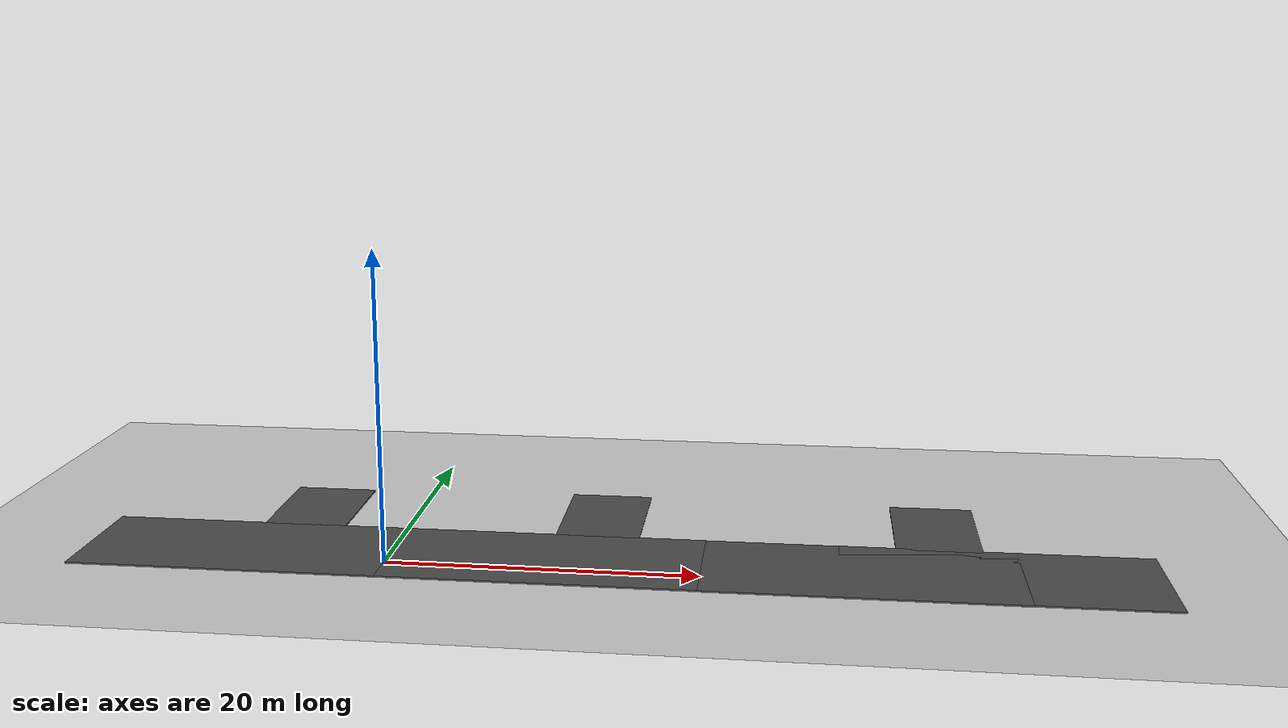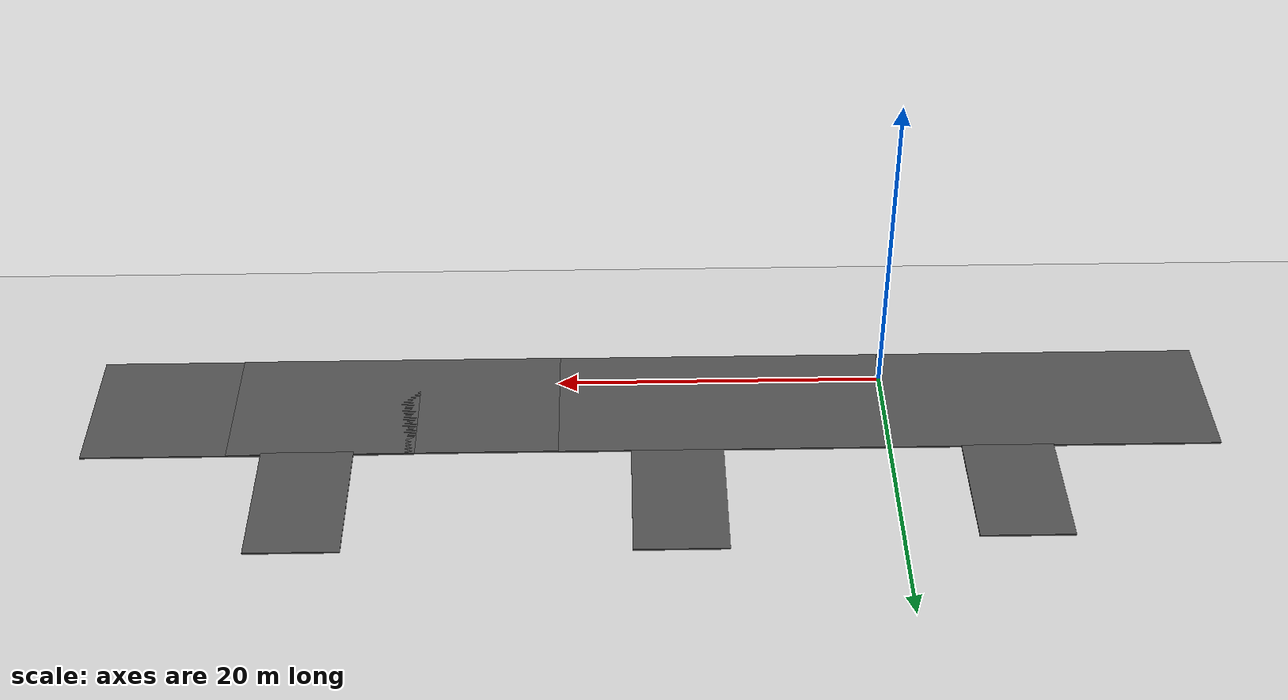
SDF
<sdf version="1.7">
 <world name="default">
  <light name="sun" type="directional">
   <pose>0 0 10 0 -0 0</pose>
   <diffuse>0.8 0.8 0.8 1</diffuse>
   <specular>0.2 0.2 0.2 1</specular>
   <attenuation>
    <range>1000</range>
    <constant>0.9</constant>
    <linear>0.01</linear>
    <quadratic>0.001</quadratic>
   </attenuation>
   <direction>-0.5 0.1 -0.9</direction>
   <spot><inner_angle>0</inner_angle><outer_angle>0</outer_angle><falloff>0</falloff></spot>
  </light>
  <gravity>0 0 -9.8</gravity>
  <magnetic_field>6e-06 2.3e-05 -4.2e-05</magnetic_field>
  <atmosphere type="adiabatic"/>
  <physics type="ode">
   <max_step_size>0.001</max_step_size>
   <real_time_factor>1</real_time_factor>
   <real_time_update_rate>1000</real_time_update_rate>
  </physics>
  <scene><ambient>0.4 0.4 0.4 1</ambient><background>0.7 0.7 0.7 1</background><shadows>1</shadows></scene>
  <audio><device>default</device></audio>
  <spherical_coordinates>
   <surface_model>EARTH_WGS84</surface_model>
   <latitude_deg>0</latitude_deg>
   <longitude_deg>0</longitude_deg>
   <elevation>0</elevation>
   <heading_deg>0</heading_deg>
  </spherical_coordinates>
  <model name="asphalt_plane_street">
   <link name="link">
    <inertial>
     <inertia><ixx>0</ixx><ixy>0</ixy><ixz>0</ixz><iyy>0</iyy><iyz>0</iyz><izz>0</izz></inertia>
     <mass>0</mass>
    </inertial>
    <visual name="visual">
     <cast_shadows>0</cast_shadows>
     <geometry><box><size>20 8.76673 0.1</size></box></geometry>
     <material>
      <script>
       <uri>model://asphalt_plane/materials/scripts</uri>
       <uri>model://asphalt_plane/materials/textures</uri>
       <name>vrc/asphalt</name>
      </script>
      <shader type="pixel"/>
     </material>
    </visual>
    <collision name="collision">
     <geometry><box><size>20 8.76673 0.1</size></box></geometry>
     <surface>
      <friction>
       <ode><mu>1</mu><mu2>1</mu2><fdir1>0 0 0</fdir1><slip1>0</slip1><slip2>0</slip2></ode>
       <torsional>
        <coefficient>1</coefficient>
        <patch_radius>0</patch_radius>
        <surface_radius>0</surface_radius>
        <use_patch_radius>1</use_patch_radius>
        <ode><slip>0</slip></ode>
       </torsional>
      </friction>
      <bounce><restitution_coefficient>0</restitution_coefficient><threshold>1e+06</threshold></bounce>
      <contact>
       <collide_without_contact>0</collide_without_contact>
       <collide_without_contact_bitmask>1</collide_without_contact_bitmask>
       <collide_bitmask>1</collide_bitmask>
       <ode>
        <soft_cfm>0</soft_cfm>
        <soft_erp>0.2</soft_erp>
        <kp>1e+13</kp>
        <kd>1</kd>
        <max_vel>0.01</max_vel>
        <min_depth>0</min_depth>
       </ode>
       <bullet>
        <split_impulse>1</split_impulse>
        <split_impulse_penetration_threshold>-0.01</split_impulse_penetration_threshold>
        <soft_cfm>0</soft_cfm>
        <soft_erp>0.2</soft_erp>
        <kp>1e+13</kp>
        <kd>1</kd>
       </bullet>
      </contact>
     </surface>
    </collision>
   </link>
   <static>1</static>
   <pose>-10.0645 1.97531 0 0 -0 0</pose>
  </model>
  <model name="asphalt_plane_street_0">
   <link name="link">
    <inertial>
     <inertia><ixx>0</ixx><ixy>0</ixy><ixz>0</ixz><iyy>0</iyy><iyz>0</iyz><izz>0</izz></inertia>
     <mass>0</mass>
    </inertial>
    <visual name="visual">
     <cast_shadows>0</cast_shadows>
     <geometry><box><size>20 8.76673 0.1</size></box></geometry>
     <material>
      <script>
       <uri>model://asphalt_plane/materials/scripts</uri>
       <uri>model://asphalt_plane/materials/textures</uri>
       <name>vrc/asphalt</name>
      </script>
      <shader type="pixel"/>
     </material>
    </visual>
    <collision name="collision">
     <geometry><box><size>20 8.76673 0.1</size></box></geometry>
     <surface>
      <friction>
       <ode><mu>1</mu><mu2>1</mu2><fdir1>0 0 0</fdir1><slip1>0</slip1><slip2>0</slip2></ode>
       <torsional>
        <coefficient>1</coefficient>
        <patch_radius>0</patch_radius>
        <surface_radius>0</surface_radius>
        <use_patch_radius>1</use_patch_radius>
        <ode><slip>0</slip></ode>
       </torsional>
      </friction>
      <bounce><restitution_coefficient>0</restitution_coefficient><threshold>1e+06</threshold></bounce>
      <contact>
       <collide_without_contact>0</collide_without_contact>
       <collide_without_contact_bitmask>1</collide_without_contact_bitmask>
       <collide_bitmask>1</collide_bitmask>
       <ode>
        <soft_cfm>0</soft_cfm>
        <soft_erp>0.2</soft_erp>
        <kp>1e+13</kp>
        <kd>1</kd>
        <max_vel>0.01</max_vel>
        <min_depth>0</min_depth>
       </ode>
       <bullet>
        <split_impulse>1</split_impulse>
        <split_impulse_penetration_threshold>-0.01</split_impulse_penetration_threshold>
        <soft_cfm>0</soft_cfm>
        <soft_erp>0.2</soft_erp>
        <kp>1e+13</kp>
        <kd>1</kd>
       </bullet>
      </contact>
     </surface>
    </collision>
   </link>
   <static>1</static>
   <pose>9.94135 1.97697 0 0 -0 0</pose>
  </model>
  <model name="asphalt_plane_street_1">
   <link name="link">
    <inertial>
     <inertia><ixx>0</ixx><ixy>0</ixy><ixz>0</ixz><iyy>0</iyy><iyz>0</iyz><izz>0</izz></inertia>
     <mass>0</mass>
    </inertial>
    <visual name="visual">
     <cast_shadows>0</cast_shadows>
     <geometry><box><size>20 8.76673 0.1</size></box></geometry>
     <material>
      <script>
       <uri>model://asphalt_plane/materials/scripts</uri>
       <uri>model://asphalt_plane/materials/textures</uri>
       <name>vrc/asphalt</name>
      </script>
      <shader type="pixel"/>
     </material>
    </visual>
    <collision name="collision">
     <geometry><box><size>20 8.76673 0.1</size></box></geometry>
     <surface>
      <friction>
       <ode><mu>1</mu><mu2>1</mu2><fdir1>0 0 0</fdir1><slip1>0</slip1><slip2>0</slip2></ode>
       <torsional>
        <coefficient>1</coefficient>
        <patch_radius>0</patch_radius>
        <surface_radius>0</surface_radius>
        <use_patch_radius>1</use_patch_radius>
        <ode><slip>0</slip></ode>
       </torsional>
      </friction>
      <bounce><restitution_coefficient>0</restitution_coefficient><threshold>1e+06</threshold></bounce>
      <contact>
       <collide_without_contact>0</collide_without_contact>
       <collide_without_contact_bitmask>1</collide_without_contact_bitmask>
       <collide_bitmask>1</collide_bitmask>
       <ode>
        <soft_cfm>0</soft_cfm>
        <soft_erp>0.2</soft_erp>
        <kp>1e+13</kp>
        <kd>1</kd>
        <max_vel>0.01</max_vel>
        <min_depth>0</min_depth>
       </ode>
       <bullet>
        <split_impulse>1</split_impulse>
        <split_impulse_penetration_threshold>-0.01</split_impulse_penetration_threshold>
        <soft_cfm>0</soft_cfm>
        <soft_erp>0.2</soft_erp>
        <kp>1e+13</kp>
        <kd>1</kd>
       </bullet>
      </contact>
     </surface>
    </collision>
   </link>
   <static>1</static>
   <pose>29.885 1.95037 0 0 -0 0</pose>
  </model>
  <model name="asphalt_plane_driveway">
   <link name="link">
    <pose>1.58145 18.6935 0 0 -0 0</pose>
    <inertial>
     <inertia><ixx>0</ixx><ixy>0</ixy><ixz>0</ixz><iyy>0</iyy><iyz>0</iyz><izz>0</izz></inertia>
     <mass>0</mass>
    </inertial>
    <visual name="visual">
     <cast_shadows>0</cast_shadows>
     <geometry><box><size>5.56676 7.73673 0.1</size></box></geometry>
     <material>
      <script>
       <uri>model://asphalt_plane/materials/scripts</uri>
       <uri>model://asphalt_plane/materials/textures</uri>
       <name>vrc/asphalt</name>
      </script>
      <shader type="pixel"/>
     </material>
    </visual>
    <collision name="collision">
     <geometry><box><size>5.56676 7.73673 0.1</size></box></geometry>
     <surface>
      <friction>
       <ode><mu>1</mu><mu2>1</mu2><fdir1>0 0 0</fdir1><slip1>0</slip1><slip2>0</slip2></ode>
       <torsional>
        <coefficient>1</coefficient>
        <patch_radius>0</patch_radius>
        <surface_radius>0</surface_radius>
        <use_patch_radius>1</use_patch_radius>
        <ode><slip>0</slip></ode>
       </torsional>
      </friction>
      <bounce><restitution_coefficient>0</restitution_coefficient><threshold>1e+06</threshold></bounce>
      <contact>
       <collide_without_contact>0</collide_without_contact>
       <collide_without_contact_bitmask>1</collide_without_contact_bitmask>
       <collide_bitmask>1</collide_bitmask>
       <ode>
        <soft_cfm>0</soft_cfm>
        <soft_erp>0.2</soft_erp>
        <kp>1e+13</kp>
        <kd>1</kd>
        <max_vel>0.01</max_vel>
        <min_depth>0</min_depth>
       </ode>
       <bullet>
        <split_impulse>1</split_impulse>
        <split_impulse_penetration_threshold>-0.01</split_impulse_penetration_threshold>
        <soft_cfm>0</soft_cfm>
        <soft_erp>0.2</soft_erp>
        <kp>1e+13</kp>
        <kd>1</kd>
       </bullet>
      </contact>
     </surface>
    </collision>
   </link>
   <static>1</static>
   <pose>-8.70563 -8.54 0 0 -0 0</pose>
  </model>
  <model name="asphalt_plane_driveway_clone">
   <link name="link">
    <pose>1.58145 18.6935 0 0 -0 0</pose>
    <inertial>
     <inertia><ixx>0</ixx><ixy>0</ixy><ixz>0</ixz><iyy>0</iyy><iyz>0</iyz><izz>0</izz></inertia>
     <mass>0</mass>
    </inertial>
    <visual name="visual">
     <cast_shadows>0</cast_shadows>
     <geometry><box><size>5.56676 8.46322 0.1</size></box></geometry>
     <material>
      <script>
       <uri>model://asphalt_plane/materials/scripts</uri>
       <uri>model://asphalt_plane/materials/textures</uri>
       <name>vrc/asphalt</name>
      </script>
      <shader type="pixel"/>
     </material>
    </visual>
    <collision name="collision">
     <geometry><box><size>5.56676 8.46322 0.1</size></box></geometry>
     <surface>
      <friction>
       <ode><mu>1</mu><mu2>1</mu2><fdir1>0 0 0</fdir1><slip1>0</slip1><slip2>0</slip2></ode>
       <torsional>
        <coefficient>1</coefficient>
        <patch_radius>0</patch_radius>
        <surface_radius>0</surface_radius>
        <use_patch_radius>1</use_patch_radius>
        <ode><slip>0</slip></ode>
       </torsional>
      </friction>
      <bounce><restitution_coefficient>0</restitution_coefficient><threshold>1e+06</threshold></bounce>
      <contact>
       <collide_without_contact>0</collide_without_contact>
       <collide_without_contact_bitmask>1</collide_without_contact_bitmask>
       <collide_bitmask>1</collide_bitmask>
       <ode>
        <soft_cfm>0</soft_cfm>
        <soft_erp>0.2</soft_erp>
        <kp>1e+13</kp>
        <kd>1</kd>
        <max_vel>0.01</max_vel>
        <min_depth>0</min_depth>
       </ode>
       <bullet>
        <split_impulse>1</split_impulse>
        <split_impulse_penetration_threshold>-0.01</split_impulse_penetration_threshold>
        <soft_cfm>0</soft_cfm>
        <soft_erp>0.2</soft_erp>
        <kp>1e+13</kp>
        <kd>1</kd>
       </bullet>
      </contact>
     </surface>
    </collision>
   </link>
   <static>1</static>
   <pose>11.202 -8.1725 0 0 -0 0</pose>
  </model>
  <model name="asphalt_plane_driveway_clone_0">
   <link name="link">
    <pose>1.58145 18.6935 0 0 -0 0</pose>
    <inertial>
     <inertia><ixx>0</ixx><ixy>0</ixy><ixz>0</ixz><iyy>0</iyy><iyz>0</iyz><izz>0</izz></inertia>
     <mass>0</mass>
    </inertial>
    <visual name="visual">
     <cast_shadows>0</cast_shadows>
     <geometry><box><size>5.56676 8.46322 0.1</size></box></geometry>
     <material>
      <script>
       <uri>model://asphalt_plane/materials/scripts</uri>
       <uri>model://asphalt_plane/materials/textures</uri>
       <name>vrc/asphalt</name>
      </script>
      <shader type="pixel"/>
     </material>
    </visual>
    <collision name="collision">
     <geometry><box><size>5.56676 8.46322 0.1</size></box></geometry>
     <surface>
      <friction>
       <ode><mu>1</mu><mu2>1</mu2><fdir1>0 0 0</fdir1><slip1>0</slip1><slip2>0</slip2></ode>
       <torsional>
        <coefficient>1</coefficient>
        <patch_radius>0</patch_radius>
        <surface_radius>0</surface_radius>
        <use_patch_radius>1</use_patch_radius>
        <ode><slip>0</slip></ode>
       </torsional>
      </friction>
      <bounce><restitution_coefficient>0</restitution_coefficient><threshold>1e+06</threshold></bounce>
      <contact>
       <collide_without_contact>0</collide_without_contact>
       <collide_without_contact_bitmask>1</collide_without_contact_bitmask>
       <collide_bitmask>1</collide_bitmask>
       <ode>
        <soft_cfm>0</soft_cfm>
        <soft_erp>0.2</soft_erp>
        <kp>1e+13</kp>
        <kd>1</kd>
        <max_vel>0.01</max_vel>
        <min_depth>0</min_depth>
       </ode>
       <bullet>
        <split_impulse>1</split_impulse>
        <split_impulse_penetration_threshold>-0.01</split_impulse_penetration_threshold>
        <soft_cfm>0</soft_cfm>
        <soft_erp>0.2</soft_erp>
        <kp>1e+13</kp>
        <kd>1</kd>
       </bullet>
      </contact>
     </surface>
    </collision>
   </link>
   <static>1</static>
   <pose>33.4363 -8.3076 0 0 -0 0</pose>
  </model>
  <model name="grass_plane">
   <static>1</static>
   <link name="link">
    <collision name="collision">
     <geometry><plane><normal>0 0 1</normal><size>100 100</size></plane></geometry>
     <surface>
      <contact><collide_bitmask>65535</collide_bitmask></contact>
      <friction><ode><mu>100</mu><mu2>50</mu2></ode></friction>
     </surface>
    </collision>
    <visual name="visual">
     <cast_shadows>0</cast_shadows>
     <geometry><plane><normal>0 0 1</normal><size>100 100</size></plane></geometry>
     <material>
      <script><uri>model://grass_plane/grass_plane.material</uri><name>GrassPlane/Image</name></script>
     </material>
    </visual>
   </link>
   <pose>-1.34531 8.43883 0 0 -0 0</pose>
  </model>
  <model name="hope_vision_one">
   <link name="base_link">
    <inertial>
     <pose>0.068333 0 0.077333 0 -0 0</pose>
     <mass>0.75</mass>
     <inertia>
      <ixx>0.00609883</ixx>
      <ixy>0</ixy>
      <ixz>0.000863333</ixz>
      <iyy>0.00880133</iyy>
      <iyz>0</iyz>
      <izz>0.0104033</izz>
     </inertia>
    </inertial>
    <collision name="base_link_fixed_joint_lump__chassis_collision">
     <pose>0.05 0 0.075 0 -0 0</pose>
     <geometry><box><size>0.3 0.3 0.15</size></box></geometry>
    </collision>
    <collision name="base_link_fixed_joint_lump__camera_frame_collision_1">
     <pose>0.23 0 0.075 0 -0 0</pose>
     <geometry><box><size>0.03 0.05 0.05</size></box></geometry>
    </collision>
    <collision name="base_link_fixed_joint_lump__caster_wheel_collision_2">
     <pose>0.14 0 0 0 -0 0</pose>
     <geometry><sphere><radius>0.05</radius></sphere></geometry>
     <surface><friction><ode><mu>0.001</mu><mu2>0.001</mu2></ode></friction></surface>
    </collision>
    <collision name="base_link_fixed_joint_lump__laser_frame_collision_3">
     <pose>0 0 0.155 0 -0 0</pose>
     <geometry><cylinder><length>0.04</length><radius>0.05</radius></cylinder></geometry>
    </collision>
    <visual name="base_link_fixed_joint_lump__chassis_visual">
     <pose>0.05 0 0.075 0 -0 0</pose>
     <geometry><box><size>0.3 0.3 0.15</size></box></geometry>
     <material>
      <script><name>Gazebo/White</name><uri>file://media/materials/scripts/gazebo.material</uri></script>
     </material>
    </visual>
    <visual name="base_link_fixed_joint_lump__camera_frame_visual_1">
     <pose>0.215 0 0.075 0 -0 0</pose>
     <geometry><box><size>0.03 0.05 0.05</size></box></geometry>
     <material>
      <script><name>Gazebo/Yellow</name><uri>file://media/materials/scripts/gazebo.material</uri></script>
     </material>
    </visual>
    <visual name="base_link_fixed_joint_lump__caster_wheel_visual_2">
     <pose>0.14 0 0 0 -0 0</pose>
     <geometry><sphere><radius>0.05</radius></sphere></geometry>
     <material>
      <script><name>Gazebo/Black</name><uri>file://media/materials/scripts/gazebo.material</uri></script>
     </material>
    </visual>
    <visual name="base_link_fixed_joint_lump__laser_frame_visual_3">
     <pose>0 0 0.155 0 -0 0</pose>
     <geometry><cylinder><length>0.04</length><radius>0.05</radius></cylinder></geometry>
     <material>
      <script><name>Gazebo/Red</name><uri>file://media/materials/scripts/gazebo.material</uri></script>
     </material>
    </visual>
    <sensor name="camera" type="camera">
     <camera>
      <horizontal_fov>1.047</horizontal_fov>
      <image><width>320</width><height>240</height></image>
      <clip><near>0.1</near><far>100</far></clip>
     </camera>
     <always_on>1</always_on>
     <update_rate>30</update_rate>
     <visualize>1</visualize>
     <plugin name="camera_controller" filename="libgazebo_ros_camera.so">
      <alwaysOn>1</alwaysOn>
      <updateRate>0.0</updateRate>
      <cameraName>camera</cameraName>
      <imageTopicName>image_raw</imageTopicName>
      <cameraInfoTopicName>camera_info</cameraInfoTopicName>
      <frameName>camera_link_optical</frameName>
      <hackBaseline>0.0</hackBaseline>
      <distortionK1>0.0</distortionK1>
      <distortionK2>0.0</distortionK2>
      <distortionK3>0.0</distortionK3>
      <distortionT1>0.0</distortionT1>
      <distortionT2>0.0</distortionT2>
      <CxPrime>0</CxPrime>
      <Cx>0.0</Cx>
      <Cy>0.0</Cy>
      <focalLength>0.0</focalLength>
     </plugin>
     <pose>0.23 0 0.075 0 -0 0</pose>
    </sensor>
    <sensor name="laser" type="ray">
     <visualize>1</visualize>
     <update_rate>10</update_rate>
     <ray>
      <scan>
       <horizontal>
        <samples>360</samples>
        <min_angle>-3.14</min_angle>
        <max_angle>3.14</max_angle>
        <resolution>1</resolution>
       </horizontal>
       <vertical><samples>1</samples><min_angle>0</min_angle><max_angle>0</max_angle></vertical>
      </scan>
      <range><min>0.3</min><max>12</max></range>
     </ray>
     <plugin name="laser_controller" filename="libgazebo_ros_ray_sensor.so">
      <ros><argument>~/out:=scan</argument></ros>
      <output_type>sensor_msgs/LaserScan</output_type>
      <frame_name>laser_frame</frame_name>
     </plugin>
     <pose>0 0 0.155 0 -0 0</pose>
    </sensor>
   </link>
   <joint name="left_wheel_joint" type="revolute">
    <pose relative_to="base_link">0 0.175 0 -1.5708 0 0</pose>
    <parent>base_link</parent>
    <child>left_wheel</child>
    <axis>
     <xyz>0 0 1</xyz>
     <limit><lower>-1e+16</lower><upper>1e+16</upper></limit>
     <dynamics><spring_reference>0</spring_reference><spring_stiffness>0</spring_stiffness></dynamics>
    </axis>
   </joint>
   <link name="left_wheel">
    <pose relative_to="left_wheel_joint">0 0 0 0 -0 0</pose>
    <inertial>
     <mass>0.1</mass>
     <inertia>
      <ixx>7.58333e-05</ixx>
      <ixy>0</ixy>
      <ixz>0</ixz>
      <iyy>7.58333e-05</iyy>
      <iyz>0</iyz>
      <izz>0.000125</izz>
     </inertia>
    </inertial>
    <collision name="left_wheel_collision">
     <geometry><cylinder><length>0.04</length><radius>0.05</radius></cylinder></geometry>
    </collision>
    <visual name="left_wheel_visual">
     <geometry><cylinder><length>0.04</length><radius>0.05</radius></cylinder></geometry>
     <material>
      <script><name>Gazebo/Blue</name><uri>file://media/materials/scripts/gazebo.material</uri></script>
     </material>
    </visual>
   </link>
   <joint name="right_wheel_joint" type="revolute">
    <pose relative_to="base_link">0 -0.175 0 1.5708 -0 0</pose>
    <parent>base_link</parent>
    <child>right_wheel</child>
    <axis>
     <xyz>0 0 -1</xyz>
     <limit><lower>-1e+16</lower><upper>1e+16</upper></limit>
     <dynamics><spring_reference>0</spring_reference><spring_stiffness>0</spring_stiffness></dynamics>
    </axis>
   </joint>
   <link name="right_wheel">
    <pose relative_to="right_wheel_joint">0 0 0 0 -0 0</pose>
    <inertial>
     <mass>0.1</mass>
     <inertia>
      <ixx>7.58333e-05</ixx>
      <ixy>0</ixy>
      <ixz>0</ixz>
      <iyy>7.58333e-05</iyy>
      <iyz>0</iyz>
      <izz>0.000125</izz>
     </inertia>
    </inertial>
    <collision name="right_wheel_collision">
     <geometry><cylinder><length>0.04</length><radius>0.05</radius></cylinder></geometry>
    </collision>
    <visual name="right_wheel_visual">
     <geometry><cylinder><length>0.04</length><radius>0.05</radius></cylinder></geometry>
     <material>
      <script><name>Gazebo/Blue</name><uri>file://media/materials/scripts/gazebo.material</uri></script>
     </material>
    </visual>
   </link>
   <static>0</static>
   <plugin name="diff_drive" filename="libgazebo_ros_diff_drive.so">
    <left_joint>left_wheel_joint</left_joint>
    <right_joint>right_wheel_joint</right_joint>
    <wheel_separation>0.35</wheel_separation>
    <wheel_diameter>0.1</wheel_diameter>
    <max_wheel_torque>200</max_wheel_torque>
    <max_wheel_acceleration>10.0</max_wheel_acceleration>
    <odometry_frame>odom</odometry_frame>
    <robot_base_frame>base_link</robot_base_frame>
    <publish_odom>1</publish_odom>
    <publish_odom_tf>1</publish_odom_tf>
    <publish_wheel_tf>1</publish_wheel_tf>
   </plugin>
   <pose>0.128884 0.043818 0.099995 -3.2e-05 -1e-05 0.108999</pose>
  </model>
  <model name="asphalt_plane_street_clone">
   <link name="link">
    <inertial>
     <inertia><ixx>0</ixx><ixy>0</ixy><ixz>0</ixz><iyy>0</iyy><iyz>0</iyz><izz>0</izz></inertia>
     <mass>0</mass>
    </inertial>
    <visual name="visual">
     <cast_shadows>0</cast_shadows>
     <geometry><box><size>20 8.76673 0.1</size></box></geometry>
     <material>
      <script>
       <uri>model://asphalt_plane/materials/scripts</uri>
       <uri>model://asphalt_plane/materials/textures</uri>
       <name>vrc/asphalt</name>
      </script>
      <shader type="pixel"/>
     </material>
    </visual>
    <collision name="collision">
     <geometry><box><size>20 8.76673 0.1</size></box></geometry>
     <surface>
      <friction>
       <ode><mu>1</mu><mu2>1</mu2><fdir1>0 0 0</fdir1><slip1>0</slip1><slip2>0</slip2></ode>
       <torsional>
        <coefficient>1</coefficient>
        <patch_radius>0</patch_radius>
        <surface_radius>0</surface_radius>
        <use_patch_radius>1</use_patch_radius>
        <ode><slip>0</slip></ode>
       </torsional>
      </friction>
      <bounce><restitution_coefficient>0</restitution_coefficient><threshold>1e+06</threshold></bounce>
      <contact>
       <collide_without_contact>0</collide_without_contact>
       <collide_without_contact_bitmask>1</collide_without_contact_bitmask>
       <collide_bitmask>1</collide_bitmask>
       <ode>
        <soft_cfm>0</soft_cfm>
        <soft_erp>0.2</soft_erp>
        <kp>1e+13</kp>
        <kd>1</kd>
        <max_vel>0.01</max_vel>
        <min_depth>0</min_depth>
       </ode>
       <bullet>
        <split_impulse>1</split_impulse>
        <split_impulse_penetration_threshold>-0.01</split_impulse_penetration_threshold>
        <soft_cfm>0</soft_cfm>
        <soft_erp>0.2</soft_erp>
        <kp>1e+13</kp>
        <kd>1</kd>
       </bullet>
      </contact>
     </surface>
    </collision>
   </link>
   <static>1</static>
   <pose>38.579 1.99526 0 0 -0 0</pose>
  </model>
 </world>
</sdf>
